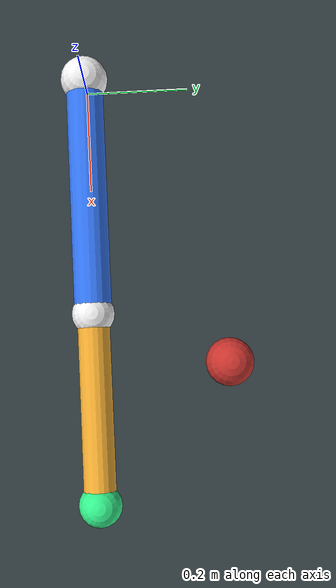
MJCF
<mujoco model="stage2_two_link_arm">
  <compiler angle="degree"/>
  <option timestep="0.002" gravity="0 0 0"/>

  <asset>
    <texture name="grid" type="2d" builtin="checker" rgb1="0.14 0.17 0.18" rgb2="0.24 0.29 0.30" width="300" height="300"/>
    <material name="grid" texture="grid" texrepeat="5 5" reflectance="0.12"/>
  </asset>

  <worldbody>
    <light name="key" pos="0 -2.5 3" dir="0 1 -1"/>
    <camera name="demo" pos="0 -2.2 1.25" xyaxes="1 0 0 0 0 1"/>
    <geom name="floor" type="plane" pos="0 0 -0.03" size="1.2 1.2 0.02" material="grid"/>

    <site name="target" type="sphere" pos="0.55 0.25 0.08" size="0.045" rgba="0.95 0.25 0.22 0.85"/>

    <body name="link1" pos="0 0 0.08">
      <joint name="shoulder" type="hinge" axis="0 0 1" damping="0.15"/>
      <geom name="shoulder_pivot" type="sphere" size="0.045" rgba="0.95 0.95 0.95 1"/>
      <geom name="link1_geom" type="capsule" fromto="0 0 0 0.45 0 0" size="0.035" mass="0.45" rgba="0.20 0.46 0.95 1"/>

      <body name="link2" pos="0.45 0 0">
        <joint name="elbow" type="hinge" axis="0 0 1" damping="0.12"/>
        <geom name="elbow_pivot" type="sphere" size="0.04" rgba="0.95 0.95 0.95 1"/>
        <geom name="link2_geom" type="capsule" fromto="0 0 0 0.35 0 0" size="0.03" mass="0.35" rgba="0.94 0.67 0.19 1"/>
        <site name="end_effector" type="sphere" pos="0.35 0 0" size="0.04" rgba="0.20 0.95 0.55 1"/>
      </body>
    </body>
  </worldbody>

  <actuator>
    <motor name="shoulder_motor" joint="shoulder" gear="1.0" ctrllimited="true" ctrlrange="-5 5"/>
    <motor name="elbow_motor" joint="elbow" gear="1.0" ctrllimited="true" ctrlrange="-5 5"/>
  </actuator>
</mujoco>
